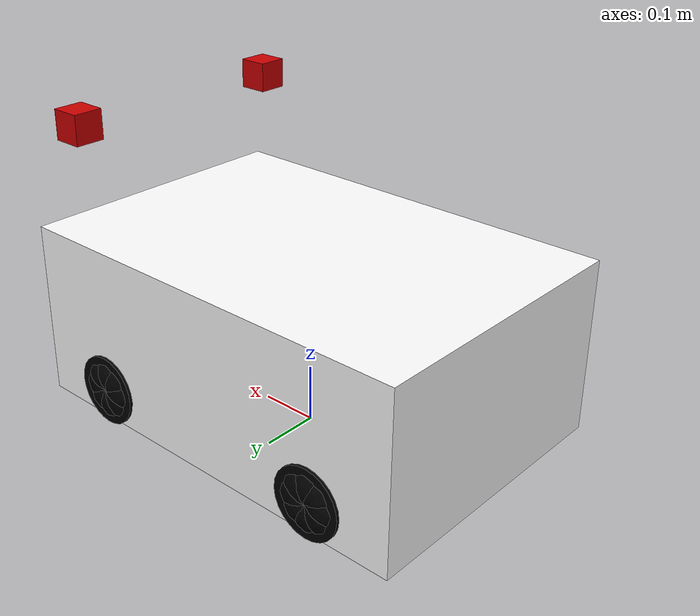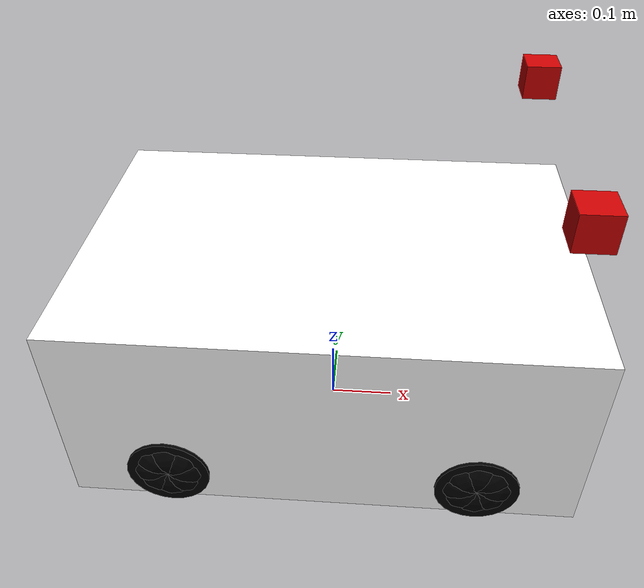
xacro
<?xml version="1.0"?>
<robot name="robot" xmlns:xacro="http://ros.org/wiki/xacro">
	<!-- General Macro -->
	<xacro:include filename="$(find config_robot)/urdf/lib/common.urdf.xacro" />
	<!-- Wheel Macro -->
	<xacro:include filename="$(find config_robot)/urdf/lib/wheel/mecanum_wheel.urdf.xacro" />
	<!-- Lidar Macro -->
	<xacro:include filename="$(find config_robot)/urdf/lib/sensor/block_lidar.urdf.xacro" />
	<!-- IMU Macro -->
	<xacro:include filename="$(find config_robot)/urdf/lib/sensor/block_imu.urdf.xacro" />
	<!-- Camera Macro -->
	<xacro:include filename="$(find config_robot)/urdf/lib/sensor/block_camera.urdf.xacro" />

	<!-- PROPERTY LIST -->
	<!--All units in m-kg-s-radians unit system -->
	<xacro:property name="M_PI_2" value="${pi/2.0}" />

	<!-- AGV Base -->
	<xacro:property name="agv_base_height" value="0.3" />
	<xacro:property name="agv_base_lift" value="0.025" />
	<xacro:property name="agv_base_width" value="0.495" />
	<xacro:property name="agv_base_length" value="0.73" />
	<xacro:property name="agv_base_mass" value="40" />
	<xacro:property name="agv_wheel_height" value="0.07825" />

	<!-- AGV Wheel -->
	<xacro:property name="wheel_x" value="0.22" />
	<xacro:property name="wheel_y" value="0.21" />
	<xacro:property name="wheel_z" value="${-agv_base_height/2-agv_base_lift + agv_wheel_height}" />

	<!-- lidar -->
	<xacro:property name="lidar_x" value="0.0" />
	<xacro:property name="lidar_y" value="0.0" />
	<xacro:property name="lidar_z" value="0.4" />
	<xacro:property name="lidar_yaw" value="${pi}" />

	<!-- left camera -->
	<xacro:property name="lcam_x" value="0.3" />
	<xacro:property name="lcam_y" value="0.2" />
	<xacro:property name="lcam_z" value="0.325" />

	<!-- right_camera -->
	<xacro:property name="rcam_x" value="0.3" />
	<xacro:property name="rcam_y" value="-0.2" />
	<xacro:property name="rcam_z" value="0.325" />

	<!-- BASE-FOOTPRINT -->
	<!-- base_footprint is a fictitious link(frame) that is on the ground right below base_link origin -->
	<link name="base_footprint"/>

	<!-- AGV_BASE_LINK -->
	<joint name="base_footprint_agv_base_joint" type="fixed">
		<origin xyz="0 0 ${agv_base_height/2+agv_base_lift}" rpy="0 0 0" />
		<parent link="base_footprint"/>
		<child link="agv_base_link" />
	</joint>

	<link name="agv_base_link">
		<xacro:inertia_cuboid mass="${agv_base_mass}" d="${agv_base_length}" w="${agv_base_width}" h="${agv_base_height}" />
		<xacro:collision_cuboid length="${agv_base_length}" width="${agv_base_width}" height="${agv_base_height}" />
		<xacro:visual_cuboid length="${agv_base_length}" width="${agv_base_width}" height="${agv_base_height}" material="White" />
	</link>

	<!-- WHEELS -->
	<xacro:mecanum_wheel_a	name="wheel_front_left" parent="agv_base_link"
													xyz="${wheel_x} ${wheel_y} ${wheel_z}" rpy="${M_PI_2} 0 0" />
	<xacro:mecanum_wheel_b	name="wheel_front_right" parent="agv_base_link"
													xyz="${wheel_x} ${-wheel_y} ${wheel_z}" rpy="${-M_PI_2} 0 0" />
	<xacro:mecanum_wheel_b	name="wheel_back_left" parent="agv_base_link"
													xyz="${-wheel_x} ${wheel_y} ${wheel_z}" rpy="${M_PI_2} 0 0" />
	<xacro:mecanum_wheel_a	name="wheel_back_right" parent="agv_base_link"
													xyz="${-wheel_x} ${-wheel_y} ${wheel_z}" rpy="${-M_PI_2} 0 0" />

	<!-- lidar -->
	<xacro:block_lidar name="lidar_link" parent="base_footprint" xyz="${lidar_x} ${lidar_y} ${lidar_z}" rpy="0.0 0.0 ${lidar_yaw}" />

	<!-- imu -->
	<xacro:block_imu name="imu_link" parent="agv_base_link" xyz="0.0 0.0 0.0" rpy="0.0 0.0 0.0" />

	<!-- left camera -->
	<xacro:block_camera name="left_camera" parent="agv_base_link" xyz="${lcam_x} ${lcam_y} ${lcam_z}" rpy="0.0 0.0 0.0" />

	<!-- right camera -->
	<xacro:block_camera name="right_camera" parent="agv_base_link" xyz="${rcam_x} ${rcam_y} ${rcam_z}" rpy="0.0 0.0 0.0" />

</robot>

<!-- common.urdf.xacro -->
<robot xmlns:xacro="http://www.ros.org/wiki/xacro">
	<material name="Black">
		<color rgba="0.0 0.0 0.0 1.0"/>
	</material>

	<material name="Red">
		<color rgba="0.8 0.0 0.0 1.0"/>
	</material>

	<material name="White">
		<color rgba="1.0 1.0 1.0 1.0"/>
	</material>

	<material name="Blue">
		<color rgba="0.0 0.0 0.8 1.0"/>
	</material>

  <!-- Macro for calculating inertia of cylinder -->
	<xacro:macro name="inertia_cylinder" params="mass radius length xyz:='0 0 0' rpy:='0 0 0'">
		<inertial>
			<origin xyz="${xyz}" rpy="${rpy}"/>
			<mass value="${mass}"/>
			<inertia	ixx="${mass*(3*radius*radius+length*length)/12}" ixy = "0" ixz = "0"
								iyy="${mass*(3*radius*radius+length*length)/12}" iyz = "0"
								izz="${mass*radius*radius/2}" />
		</inertial>
	</xacro:macro>

  <!-- Macro for calculating inertia of sphere -->
	<xacro:macro name="inertia_sphere" params="radius rho:=1000 xyz:='0 0 0' rpy:='0 0 0'">
		<xacro:property name="mass" value="${4/3*rho*pi*radius**3}"/>
		<inertial>
			<origin xyz="${xyz}" rpy="${rpy}"/>
			<mass value="${mass}"/>
			<inertia	ixx="${(2/5*mass)*(radius**2)}" ixy="0" ixz="0"
								iyy="${(2/5*mass)*(radius**2)}"  iyz="0"
								izz="${(2/5*mass)*(radius**2)}" />
		</inertial>
	</xacro:macro>

	<!-- Macro for calculating inertia of cube -->
	<xacro:macro name="inertia_cuboid" params="mass w d h xyz:='0 0 0' rpy:='0 0 0'">
	<inertial>
		<origin xyz="${xyz}" rpy="${rpy}"/>
		<mass value="${mass}"/>
		<inertia	ixx="${mass*(h*h+d*d)/12}" ixy = "0" ixz = "0"
							iyy="${mass*(w*w+d*d)/12}" iyz = "0"
							izz="${mass*(w*w+h*h)/12}" />
		</inertial>
	</xacro:macro>

	<xacro:macro name="collision_cylinder" params="radius length xyz:='0 0 0' rpy:='0 0 0'">
		<collision>
			<origin xyz="${xyz}" rpy="${rpy}"/>
			<geometry>
				<cylinder radius="${radius}" length="${length}" />
			</geometry>
		</collision>
	</xacro:macro>

	<xacro:macro name="collision_sphere" params="radius xyz:='0 0 0' rpy:='0 0 0'">
		<collision>
			<origin xyz="${xyz}" rpy="${rpy}"/>
			<geometry>
				<sphere radius="${radius}"/>
			</geometry>
		</collision>
	</xacro:macro>

	<xacro:macro name="collision_cuboid" params="length width height xyz:='0 0 0' rpy:='0 0 0'">
		<collision>
			<origin xyz="0 0 0" rpy="0 0 0" />
			<geometry>
				<box size="${length} ${width} ${height}" />
			</geometry>
		</collision>
	</xacro:macro>

	<xacro:macro name="visual_sphere" params="radius xyz:='0 0 0' rpy:='0 0 0' material:='Black'">
		<visual>
			<origin xyz="${xyz}" rpy="${rpy}"/>
			<geometry>
				<sphere radius="${radius}"/>
			</geometry>
			<material name="${material}" />
		</visual>
	</xacro:macro>

	<xacro:macro name="visual_cylinder" params="radius length xyz:='0 0 0' rpy:='0 0 0' material:='Black'">
		<visual>
			<origin xyz="${xyz}" rpy="${rpy}"/>
			<geometry>
				<cylinder radius="${radius}" length="${length}" />
			</geometry>
			<material name="${material}" />
		</visual>
	</xacro:macro>

	<xacro:macro name="visual_cuboid" params="length width height xyz:='0 0 0' rpy:='0 0 0' material:='Black'">
		<visual>
			<origin xyz="0 0 0" rpy="0 0 0" />
			<geometry>
				<box size="${length} ${width} ${height}" />
			</geometry>
			<material name="${material}" />
		</visual>
	</xacro:macro>
</robot>

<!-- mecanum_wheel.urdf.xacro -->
<robot xmlns:xacro="http://www.ros.org/wiki/xacro">
  <xacro:macro name="roller" params="wheel_name num roller_angle N radius roller_bottom_offset">
		<xacro:property name="axis_offset" value="${roller_bottom_offset + radius}"/>
		<xacro:property name="angle" value="${2*num*N*pi}"/>

		<joint name="roller_${wheel_name}_${num}_joint" type="continuous">
			<origin xyz="${cos(angle)*axis_offset} ${-sin(angle)*axis_offset} 0" rpy="${roller_angle} 0.0 ${-2.0*num*pi*N}"/>
			<axis xyz="0 0 0" />
			<parent link="${wheel_name}"/>
			<child link="roller_${wheel_name}_${num}"/>
			<dynamics damping="0.01" friction="0.0" />
		</joint>

		<link name="roller_${wheel_name}_${num}">
			<xacro:visual_sphere rpy="0 0 0" radius="${radius}"/>
			<xacro:collision_sphere xyz="0 0 0" radius="${radius}"/>
			<xacro:inertia_sphere rpy="0 0 0" radius="${radius}"/>
		</link>
	</xacro:macro>

	<xacro:macro name="mecanum_wheel" params="wheel_name parent roller_angle xyz:='0 0 0' rpy:='0 0 0'">
		<xacro:property name="wheel_radius" value="0.07825"/>
		<xacro:property name="core_radius" value="${wheel_radius * 0.76}"/>
		<xacro:property name="length" value="0.085"/>
		<xacro:property name="roller_radius" value="0.05"/>
		<xacro:property name="mass" value="2.1"/>
		<xacro:property name="num_of_roller" value="${1.0/8.0}"/>

		<joint name="${wheel_name}_joint" type="continuous">
			<axis xyz="0 0 1" />
			<origin xyz="${xyz}" rpy="${rpy}" />
			<parent link="${parent}" />
			<child link="${wheel_name}" />
			<dynamics damping="0.01" friction="0.0" />
		</joint>

		<link name="${wheel_name}">
			<xacro:inertia_cylinder mass="${mass}" radius="${core_radius}" length="${length}" />
			<xacro:collision_cylinder radius="${core_radius}" length="${length}" />
			<xacro:visual_cylinder radius="${core_radius}" length="${length}" />
		</link>

		<xacro:roller	wheel_name="${name}" num="0" roller_angle="${roller_angle}" N="${num_of_roller}" radius="${roller_radius}"
									roller_bottom_offset="${-(wheel_radius - roller_radius)}" />
		<xacro:roller	wheel_name="${name}" num="1" roller_angle="${roller_angle}" N="${num_of_roller}" radius="${roller_radius}"
									roller_bottom_offset="${-(wheel_radius - roller_radius)}" />
		<xacro:roller	wheel_name="${name}" num="2" roller_angle="${roller_angle}" N="${num_of_roller}" radius="${roller_radius}"
									roller_bottom_offset="${-(wheel_radius - roller_radius)}" />
		<xacro:roller	wheel_name="${name}" num="3" roller_angle="${roller_angle}" N="${num_of_roller}" radius="${roller_radius}"
									roller_bottom_offset="${-(wheel_radius - roller_radius)}" />
		<xacro:roller	wheel_name="${name}" num="4" roller_angle="${roller_angle}" N="${num_of_roller}" radius="${roller_radius}"
									roller_bottom_offset="${-(wheel_radius - roller_radius)}" />
		<xacro:roller	wheel_name="${name}" num="5" roller_angle="${roller_angle}" N="${num_of_roller}" radius="${roller_radius}"
									roller_bottom_offset="${-(wheel_radius - roller_radius)}" />
		<xacro:roller	wheel_name="${name}" num="6" roller_angle="${roller_angle}" N="${num_of_roller}" radius="${roller_radius}"
									roller_bottom_offset="${-(wheel_radius - roller_radius)}" />
		<xacro:roller	wheel_name="${name}" num="7" roller_angle="${roller_angle}" N="${num_of_roller}" radius="${roller_radius}"
									roller_bottom_offset="${-(wheel_radius - roller_radius)}" />
	</xacro:macro>

  <xacro:macro name="mecanum_wheel_a" params="name parent xyz:='0 0 0' rpy:='0 0 0'">
		<xacro:mecanum_wheel wheel_name="${name}" parent="${parent}" xyz="${xyz}" rpy="${rpy}" roller_angle="${-pi/4.0}" />
  </xacro:macro>

	<xacro:macro name="mecanum_wheel_b" params="name parent xyz:='0 0 0' rpy:='0 0 0'">
		<xacro:mecanum_wheel wheel_name="${name}" parent="${parent}" xyz="${xyz}" rpy="${rpy}" roller_angle="${pi/4.0}" />
  </xacro:macro>
</robot>

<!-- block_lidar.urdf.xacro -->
<robot xmlns:xacro="http://www.ros.org/wiki/xacro">
	<!-- lidar -->
	<xacro:property name="lidar_size" value="0.01" />

	<xacro:macro name="lidar_gazebo" params="name">
		<gazebo reference="${name}">
			<sensor type="ray" name="${name}">
				<pose>0 0 0 0 0 0</pose>
				<visualize>true</visualize>
				<update_rate>40</update_rate>
				<ray>
					<scan>
						<horizontal>
							<samples>720</samples>
							<resolution>1</resolution>
							<min_angle>${-pi}</min_angle>
							<max_angle>${pi}</max_angle>
						</horizontal>
					</scan>
					<noise>
						<type>gaussian</type>
						<mean>0.0</mean>
						<stddev>0.01</stddev>
					</noise>
					<range>
						<min>0.45</min>
						<max>100.0</max>
						<resolution>0.001</resolution>
					</range>
				</ray>
				<plugin name="gazebo_ros_base_laser_controller" filename="libgazebo_ros_laser.so">
					<topicName>/scan</topicName>
					<frameName>${name}</frameName>
				</plugin>
    	</sensor>

		</gazebo>
	</xacro:macro>

	<xacro:macro name="block_lidar" params="name parent xyz:='0 0 0' rpy:='0 0 0'">
		<joint name="${name}_joint" type="fixed">
			<origin xyz="${xyz}" rpy="${rpy}" />
			<parent link="${parent}" />
			<child link="${name}" />
		</joint>

		<link name="${name}">
		</link>
	</xacro:macro>
</robot>

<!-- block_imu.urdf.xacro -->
<robot xmlns:xacro="http://www.ros.org/wiki/xacro">
	<!-- lidar -->
	<xacro:property name="imu_size" value="0.001" />

	<xacro:macro name="imu_gazebo" params="name">
		<gazebo reference="${name}">
			<gravity>true</gravity>
			<sensor type="imu" name="${name}">
				<always_on>true</always_on>
				<update_rate>500</update_rate>
				<visualize>true</visualize>
				<topic>__default_topic__</topic>
				<plugin filename="libgazebo_ros_imu_sensor.so" name="imu_plugin">
					<topicName>imu</topicName>
					<bodyName>imu_link</bodyName>
					<updateRateHZ>100.0</updateRateHZ>
					<gaussianNoise>0.0</gaussianNoise>
					<xyzOffset>0 0 0</xyzOffset>
					<rpyOffset>0 0 0</rpyOffset>
					<frameName>imu_link</frameName>
					<initialOrientationAsReference>false</initialOrientationAsReference>
				</plugin>
				<pose>0 0 0 0 0 0</pose>
			</sensor>
		</gazebo>
	</xacro:macro>

	<xacro:macro name="block_imu" params="name parent xyz:='0 0 0' rpy:='0 0 0'">
		<joint name="${name}_joint" type="fixed">
			<origin xyz="${xyz}" rpy="${rpy}" />
			<parent link="${parent}" />
			<child link="${name}" />
		</joint>

		<link name="${name}">
			<xacro:inertia_cuboid mass="0.01" d="${imu_size}" w="${imu_size}" h="${imu_size}" />
			<xacro:collision_cuboid length="${imu_size}" width="${imu_size}" height="${imu_size}" />
			<xacro:visual_cuboid length="${imu_size}" width="${imu_size}" height="${imu_size}"  material="Blue" />
		</link>
	</xacro:macro>
</robot>

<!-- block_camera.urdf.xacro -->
<robot xmlns:xacro="http://www.ros.org/wiki/xacro">
	<!-- camera -->
	<xacro:property name="cam_size" value="0.05" />

	<xacro:macro name="camera_gazebo" params="name">
		<gazebo reference="${name}">
			<sensor type="camera" name="${name}">
				<update_rate>30</update_rate>
				<camera name="${name}">
					<horizontal_fov>1.3962634</horizontal_fov>
					<image>
						<width>1024</width>
						<height>1024</height>
						<format>R8G8B8</format>
					</image>
					<clip>
						<near>0.1</near>
						<far>300</far>
					</clip>
					<noise>
						<type>gaussian</type>
						<mean>0.0</mean>
						<stddev>0.007</stddev>
					</noise>
				</camera>
				<plugin name="camera_controller" filename="libgazebo_ros_camera.so">
					<imageTopicName>image_raw</imageTopicName>
					<frameName>${name}</frameName>
					<alwaysOn>true</alwaysOn>
					<updateRate>1.0</updateRate>
					<cameraName>${name}</cameraName>
					<cameraInfoTopicName>camera_info</cameraInfoTopicName>
					<hackBaseline>0.07</hackBaseline>
					<distortionK1>0.0</distortionK1>
					<distortionK2>0.0</distortionK2>
					<distortionK3>0.0</distortionK3>
					<distortionT1>0.0</distortionT1>
					<distortionT2>0.0</distortionT2>
				</plugin>
			</sensor>

		</gazebo>
	</xacro:macro>

	<xacro:macro name="block_camera" params="name parent xyz:='0 0 0' rpy:='0 0 0'">
		<joint name="${name}_joint" type="fixed">
			<origin xyz="${xyz}" rpy="${rpy}" />
			<parent link="${parent}" />
			<child link="${name}" />
		</joint>

		<link name="${name}">
			<xacro:inertia_cuboid mass="0.1" d="${cam_size}" w="${cam_size}" h="${cam_size}" />
			<xacro:collision_cuboid length="${cam_size}" width="${cam_size}" height="${cam_size}" />
			<xacro:visual_cuboid length="${cam_size}" width="${cam_size}" height="${cam_size}"  material="Red" />
		</link>
	</xacro:macro>
</robot>
